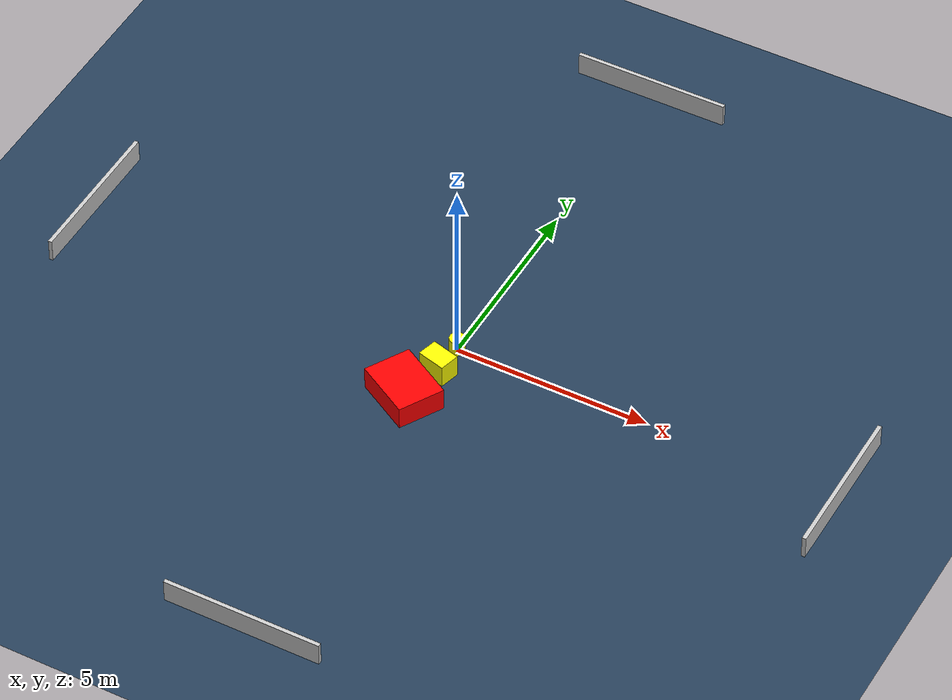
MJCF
<?xml version="1.0" ?>
<mujoco model="generated_environment">
  <option timestep="0.01" integrator="RK4" cone="elliptic"/>
  <default>
    <geom density="1"/>
  </default>
  <asset>
    <texture builtin="gradient" height="3072" name="skybox" rgb1="0.3 0.5 0.7" rgb2="0 0 0" type="skybox" width="512"/>
    <texture builtin="checker" height="300" name="groundplane" rgb1="0.2 0.3 0.4" rgb2="0.1 0.2 0.3" type="2d" width="300"/>
    <material name="groundplane" reflectance="0.2" texrepeat="5 5" texture="groundplane"/>
  </asset>
  <worldbody>
    <light dir="0 0 -1" directional="true" pos="0 0 1.5"/>
    <geom condim="3" friction="0.5 0.005 0.001" material="groundplane" name="floor" pos="0 0 0" size="0 0 0.05" type="plane"/>
    <body name="walls">
      <geom name="wall_1" condim="4" pos="-10.0 0.0 0.3" rgba="0.800000011920929 0.800000011920929 0.800000011920929 1.0" size="0.05 2.0 0.3" type="box"/>
      <geom name="wall_2" condim="4" pos="10.0 0.0 0.3" rgba="0.800000011920929 0.800000011920929 0.800000011920929 1.0" size="0.05 2.0 0.3" type="box"/>
      <geom name="wall_3" condim="4" pos="0.0 -10.0 0.3" rgba="0.800000011920929 0.800000011920929 0.800000011920929 1.0" size="2.0 0.05 0.3" type="box"/>
      <geom name="wall_4" condim="4" pos="0.0 10.0 0.3" rgba="0.800000011920929 0.800000011920929 0.800000011920929 1.0" size="2.0 0.05 0.3" type="box"/>
    </body>
    <body name="robot">
      <joint name="joint_x" type="slide" pos="0 0 0" axis="1 0 0"/>
      <joint name="joint_y" type="slide" pos="0 0 0" axis="0 1 0"/>
      <geom name="robot" type="cylinder" pos="0.0 0.0 0.2" size="0.2 0.2 0.0" mass="5.0" friction="1.0 0.005 0.0001" condim="4" rgba="1.0 1.0 0.0 1.0"/>
    </body>
    <body name="obstacle_1_movable">
      <geom name="obstacle_1_movable" condim="4" pos="-0.03291078303361781 -0.8703400439360464 0.3" euler="0 0 255.1132048783119" friction="0.0 0.005 0.001" rgba="1.0 1.0 0.0 1.0" size="0.2612318833709399 0.36849146284601153 0.3" type="box" mass="0.1"/>
      <joint type="free"/>
    </body>
    <body name="obstacle_2_static">
      <geom name="obstacle_2_static" condim="4" pos="-0.3433345775249827 -1.9533998452106598 0.3" euler="0 0 240.22667960222478" friction="0.0 0.005 0.001" rgba="1.0 0.0 0.0 1.0" size="0.606775359068456 0.7833309887174729 0.3" type="box"/>
    </body>
  </worldbody>
  <actuator>
    <motor name="actuator_x" joint="joint_x" gear="1" ctrlrange="-1 1"/>
    <motor name="actuator_y" joint="joint_y" gear="1" ctrlrange="-1 1"/>
  </actuator>
</mujoco>
